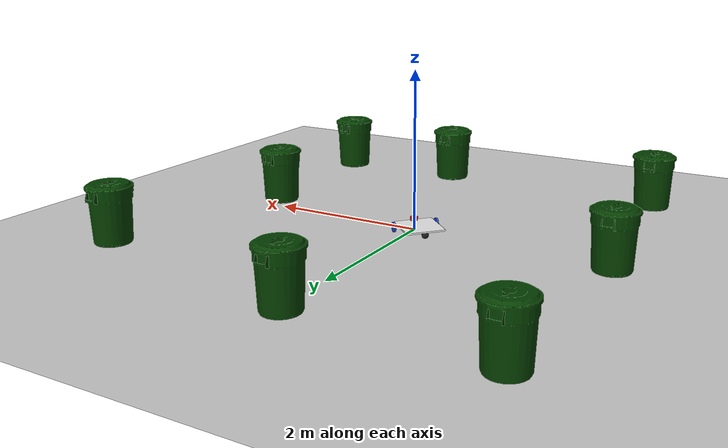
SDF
<sdf version="1.7">
 <world name="default">
  <light name="sun" type="directional">
   <pose>0 0 10 0 -0 0</pose>
   <diffuse>0.8 0.8 0.8 1</diffuse>
   <specular>0.2 0.2 0.2 1</specular>
   <attenuation>
    <range>1000</range>
    <constant>0.9</constant>
    <linear>0.01</linear>
    <quadratic>0.001</quadratic>
   </attenuation>
   <direction>-0.5 0.1 -0.9</direction>
   <spot><inner_angle>0</inner_angle><outer_angle>0</outer_angle><falloff>0</falloff></spot>
  </light>
  <model name="ground_plane">
   <static>1</static>
   <link name="link">
    <collision name="collision">
     <geometry><plane><normal>0 0 1</normal><size>100 100</size></plane></geometry>
     <surface><friction><ode><mu>100</mu><mu2>50</mu2></ode></friction></surface>
    </collision>
    <visual name="visual">
     <cast_shadows>0</cast_shadows>
     <geometry><plane><normal>0 0 1</normal><size>100 100</size></plane></geometry>
     <material>
      <script><uri>file://media/materials/scripts/gazebo.material</uri><name>Gazebo/Grey</name></script>
     </material>
    </visual>
   </link>
  </model>
  <gravity>0 0 -9.8</gravity>
  <magnetic_field>6e-06 2.3e-05 -4.2e-05</magnetic_field>
  <atmosphere type="adiabatic"/>
  <physics type="ode">
   <max_step_size>0.001</max_step_size>
   <real_time_factor>1</real_time_factor>
   <real_time_update_rate>1000</real_time_update_rate>
  </physics>
  <scene><ambient>0.4 0.4 0.4 1</ambient><background>0.7 0.7 0.7 1</background><shadows>1</shadows></scene>
  <audio><device>default</device></audio>
  <spherical_coordinates>
   <surface_model>EARTH_WGS84</surface_model>
   <latitude_deg>0</latitude_deg>
   <longitude_deg>0</longitude_deg>
   <elevation>0</elevation>
   <heading_deg>0</heading_deg>
  </spherical_coordinates>
  <model name="my_bot">
   <link name="base_link">
    <inertial>
     <pose>-0.149231 0 0.192981 0 -0 0</pose>
     <mass>5.2</mass>
     <inertia>
      <ixx>0.128176</ixx>
      <ixy>0</ixy>
      <ixz>-0.00217308</ixz>
      <iyy>0.138833</iyy>
      <iyz>0</iyz>
      <izz>0.219196</izz>
     </inertia>
    </inertial>
    <collision name="base_link_fixed_joint_lump__chassis_collision">
     <pose>-0.15 0 0 0 -0 0</pose>
     <geometry><box><size>0.5 0.5 0.02</size></box></geometry>
    </collision>
    <collision name="base_link_fixed_joint_lump__caster_wheel_collision_1">
     <pose>-0.36 0 -0.045 0 -0 0</pose>
     <geometry><sphere><radius>0.045</radius></sphere></geometry>
     <surface><friction><ode><mu>0.001</mu><mu2>0.001</mu2></ode></friction></surface>
    </collision>
    <collision name="base_link_fixed_joint_lump__laser_frame_collision_2">
     <pose>0.05 0 0.04 0 -0 0</pose>
     <geometry><cylinder><length>0.04</length><radius>0.05</radius></cylinder></geometry>
    </collision>
    <visual name="base_link_fixed_joint_lump__chassis_visual">
     <pose>-0.15 0 0 0 -0 0</pose>
     <geometry><box><size>0.5 0.5 0.02</size></box></geometry>
     <material>
      <script><name>Gazebo/White</name><uri>file://media/materials/scripts/gazebo.material</uri></script>
     </material>
    </visual>
    <visual name="base_link_fixed_joint_lump__caster_wheel_visual_1">
     <pose>-0.36 0 -0.045 0 -0 0</pose>
     <geometry><sphere><radius>0.045</radius></sphere></geometry>
     <material>
      <script><name>Gazebo/Black</name><uri>file://media/materials/scripts/gazebo.material</uri></script>
     </material>
    </visual>
    <visual name="base_link_fixed_joint_lump__laser_frame_visual_2">
     <pose>0.05 0 0.04 0 -0 0</pose>
     <geometry><cylinder><length>0.04</length><radius>0.05</radius></cylinder></geometry>
     <material>
      <script><name>Gazebo/Red</name><uri>file://media/materials/scripts/gazebo.material</uri></script>
     </material>
    </visual>
    <sensor name="laser" type="ray">
     <visualize>0</visualize>
     <update_rate>10</update_rate>
     <ray>
      <scan>
       <horizontal>
        <samples>360</samples>
        <resolution>1</resolution>
        <min_angle>-3.14</min_angle>
        <max_angle>3.14</max_angle>
       </horizontal>
       <vertical><samples>1</samples><min_angle>0</min_angle><max_angle>0</max_angle></vertical>
      </scan>
      <range><min>0.3</min><max>12</max><resolution>0.01</resolution></range>
     </ray>
     <plugin name="laser_controller" filename="libgazebo_ros_ray_sensor.so">
      <ros><argument>~/out:=scan</argument></ros>
      <output_type>sensor_msgs/LaserScan</output_type>
      <frame_name>laser_frame</frame_name>
     </plugin>
     <pose>0.05 0 0.04 0 -0 0</pose>
    </sensor>
   </link>
   <joint name="left_wheel_joint" type="revolute">
    <pose relative_to="base_link">0 0.28 -0.03 -1.5708 0 0</pose>
    <parent>base_link</parent>
    <child>left_wheel</child>
    <axis>
     <xyz>0 0 1</xyz>
     <limit><lower>-1e+16</lower><upper>1e+16</upper></limit>
     <dynamics><spring_reference>0</spring_reference><spring_stiffness>0</spring_stiffness></dynamics>
    </axis>
   </joint>
   <link name="left_wheel">
    <pose relative_to="left_wheel_joint">0 0 0 0 -0 0</pose>
    <inertial>
     <mass>0.1</mass>
     <inertia>
      <ixx>0.000102865</ixx>
      <ixy>0</ixy>
      <ixz>0</ixz>
      <iyy>0.000102865</iyy>
      <iyz>0</iyz>
      <izz>0.000195313</izz>
     </inertia>
    </inertial>
    <collision name="left_wheel_collision">
     <geometry><sphere><radius>0.0625</radius></sphere></geometry>
    </collision>
    <visual name="left_wheel_visual">
     <geometry><cylinder><length>0.025</length><radius>0.0625</radius></cylinder></geometry>
     <material>
      <script><name>Gazebo/Blue</name><uri>file://media/materials/scripts/gazebo.material</uri></script>
     </material>
    </visual>
   </link>
   <joint name="right_wheel_joint" type="revolute">
    <pose relative_to="base_link">0 -0.28 -0.03 1.5708 -0 0</pose>
    <parent>base_link</parent>
    <child>right_wheel</child>
    <axis>
     <xyz>0 0 -1</xyz>
     <limit><lower>-1e+16</lower><upper>1e+16</upper></limit>
     <dynamics><spring_reference>0</spring_reference><spring_stiffness>0</spring_stiffness></dynamics>
    </axis>
   </joint>
   <link name="right_wheel">
    <pose relative_to="right_wheel_joint">0 0 0 0 -0 0</pose>
    <inertial>
     <mass>0.1</mass>
     <inertia>
      <ixx>0.000102865</ixx>
      <ixy>0</ixy>
      <ixz>0</ixz>
      <iyy>0.000102865</iyy>
      <iyz>0</iyz>
      <izz>0.000195313</izz>
     </inertia>
    </inertial>
    <collision name="right_wheel_collision">
     <geometry><sphere><radius>0.0625</radius></sphere></geometry>
    </collision>
    <visual name="right_wheel_visual">
     <geometry><cylinder><length>0.025</length><radius>0.0625</radius></cylinder></geometry>
     <material>
      <script><name>Gazebo/Blue</name><uri>file://media/materials/scripts/gazebo.material</uri></script>
     </material>
    </visual>
   </link>
   <static>0</static>
   <plugin name="gazebo_ros2_control" filename="libgazebo_ros2_control.so">
    <parameters>/home/edisonwong/dev_ws/install/my_bot/share/my_bot/config/my_controllers.yaml</parameters>
   </plugin>
   <pose>-0.015764 0.00899 0.092495 -1.2e-05 -0.006947 -0.734974</pose>
  </model>
  <model name="first_2015_trash_can">
   <link name="link">
    <inertial>
     <pose>0 0 0.3683 0 -0 0</pose>
     <mass>4.83076</mass>
     <inertia>
      <ixx>0.281534</ixx>
      <ixy>0</ixy>
      <ixz>0</ixz>
      <iyy>0.281534</iyy>
      <iyz>0</iyz>
      <izz>0.126223</izz>
     </inertia>
    </inertial>
    <visual name="visual">
     <geometry><mesh><uri>model://first_2015_trash_can/meshes/trash_can.dae</uri></mesh></geometry>
    </visual>
    <collision name="collision">
     <geometry><mesh><uri>model://first_2015_trash_can/meshes/trash_can.dae</uri></mesh></geometry>
    </collision>
   </link>
   <pose>-2.55858 0.189183 -3e-06 3e-06 1.1e-05 -0.000884</pose>
  </model>
  <model name="first_2015_trash_can_0">
   <link name="link">
    <inertial>
     <pose>0 0 0.3683 0 -0 0</pose>
     <mass>4.83076</mass>
     <inertia>
      <ixx>0.281534</ixx>
      <ixy>0</ixy>
      <ixz>0</ixz>
      <iyy>0.281534</iyy>
      <iyz>0</iyz>
      <izz>0.126223</izz>
     </inertia>
    </inertial>
    <visual name="visual">
     <geometry><mesh><uri>model://first_2015_trash_can/meshes/trash_can.dae</uri></mesh></geometry>
    </visual>
    <collision name="collision">
     <geometry><mesh><uri>model://first_2015_trash_can/meshes/trash_can.dae</uri></mesh></geometry>
    </collision>
   </link>
   <pose>-0.048747 2.84445 -5e-06 -4e-06 -1e-06 -0.000759</pose>
  </model>
  <model name="first_2015_trash_can_1">
   <link name="link">
    <inertial>
     <pose>0 0 0.3683 0 -0 0</pose>
     <mass>4.83076</mass>
     <inertia>
      <ixx>0.281534</ixx>
      <ixy>0</ixy>
      <ixz>0</ixz>
      <iyy>0.281534</iyy>
      <iyz>0</iyz>
      <izz>0.126223</izz>
     </inertia>
    </inertial>
    <visual name="visual">
     <geometry><mesh><uri>model://first_2015_trash_can/meshes/trash_can.dae</uri></mesh></geometry>
    </visual>
    <collision name="collision">
     <geometry><mesh><uri>model://first_2015_trash_can/meshes/trash_can.dae</uri></mesh></geometry>
    </collision>
   </link>
   <pose>0.70335 -2.51973 -4e-06 -3e-06 4e-06 -0.00042</pose>
  </model>
  <model name="first_2015_trash_can_2">
   <link name="link">
    <inertial>
     <pose>0 0 0.3683 0 -0 0</pose>
     <mass>4.83076</mass>
     <inertia>
      <ixx>0.281534</ixx>
      <ixy>0</ixy>
      <ixz>0</ixz>
      <iyy>0.281534</iyy>
      <iyz>0</iyz>
      <izz>0.126223</izz>
     </inertia>
    </inertial>
    <visual name="visual">
     <geometry><mesh><uri>model://first_2015_trash_can/meshes/trash_can.dae</uri></mesh></geometry>
    </visual>
    <collision name="collision">
     <geometry><mesh><uri>model://first_2015_trash_can/meshes/trash_can.dae</uri></mesh></geometry>
    </collision>
   </link>
   <pose>2.24169 -0.267805 -3e-06 2e-06 1.1e-05 -0.000493</pose>
  </model>
  <model name="first_2015_trash_can_3">
   <link name="link">
    <inertial>
     <pose>0 0 0.3683 0 -0 0</pose>
     <mass>4.83076</mass>
     <inertia>
      <ixx>0.281534</ixx>
      <ixy>0</ixy>
      <ixz>0</ixz>
      <iyy>0.281534</iyy>
      <iyz>0</iyz>
      <izz>0.126223</izz>
     </inertia>
    </inertial>
    <visual name="visual">
     <geometry><mesh><uri>model://first_2015_trash_can/meshes/trash_can.dae</uri></mesh></geometry>
    </visual>
    <collision name="collision">
     <geometry><mesh><uri>model://first_2015_trash_can/meshes/trash_can.dae</uri></mesh></geometry>
    </collision>
   </link>
   <pose>2.40702 -2.44768 -4e-06 8e-06 1.8e-05 -0.00031</pose>
  </model>
  <model name="first_2015_trash_can_4">
   <link name="link">
    <inertial>
     <pose>0 0 0.3683 0 -0 0</pose>
     <mass>4.83076</mass>
     <inertia>
      <ixx>0.281534</ixx>
      <ixy>0</ixy>
      <ixz>0</ixz>
      <iyy>0.281534</iyy>
      <iyz>0</iyz>
      <izz>0.126223</izz>
     </inertia>
    </inertial>
    <visual name="visual">
     <geometry><mesh><uri>model://first_2015_trash_can/meshes/trash_can.dae</uri></mesh></geometry>
    </visual>
    <collision name="collision">
     <geometry><mesh><uri>model://first_2015_trash_can/meshes/trash_can.dae</uri></mesh></geometry>
    </collision>
   </link>
   <pose>-2.33366 -2.41491 -0 1e-06 2.1e-05 -0.000376</pose>
  </model>
  <model name="first_2015_trash_can_5">
   <link name="link">
    <inertial>
     <pose>0 0 0.3683 0 -0 0</pose>
     <mass>4.83076</mass>
     <inertia>
      <ixx>0.281534</ixx>
      <ixy>0</ixy>
      <ixz>0</ixz>
      <iyy>0.281534</iyy>
      <iyz>0</iyz>
      <izz>0.126223</izz>
     </inertia>
    </inertial>
    <visual name="visual">
     <geometry><mesh><uri>model://first_2015_trash_can/meshes/trash_can.dae</uri></mesh></geometry>
    </visual>
    <collision name="collision">
     <geometry><mesh><uri>model://first_2015_trash_can/meshes/trash_can.dae</uri></mesh></geometry>
    </collision>
   </link>
   <pose>-2.46069 2.93641 -1.3e-05 -1e-06 9e-06 -0.00015</pose>
  </model>
  <model name="first_2015_trash_can_6">
   <link name="link">
    <inertial>
     <pose>0 0 0.3683 0 -0 0</pose>
     <mass>4.83076</mass>
     <inertia>
      <ixx>0.281534</ixx>
      <ixy>0</ixy>
      <ixz>0</ixz>
      <iyy>0.281534</iyy>
      <iyz>0</iyz>
      <izz>0.126223</izz>
     </inertia>
    </inertial>
    <visual name="visual">
     <geometry><mesh><uri>model://first_2015_trash_can/meshes/trash_can.dae</uri></mesh></geometry>
    </visual>
    <collision name="collision">
     <geometry><mesh><uri>model://first_2015_trash_can/meshes/trash_can.dae</uri></mesh></geometry>
    </collision>
   </link>
   <pose>2.92708 2.17338 -2e-06 5e-06 9e-06 -3.9e-05</pose>
  </model>
 </world>
</sdf>
